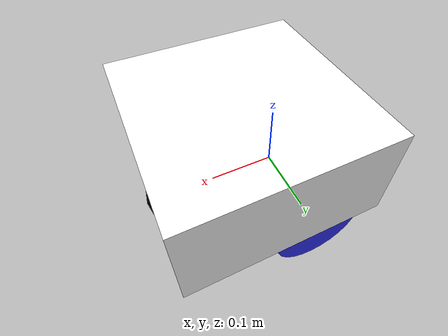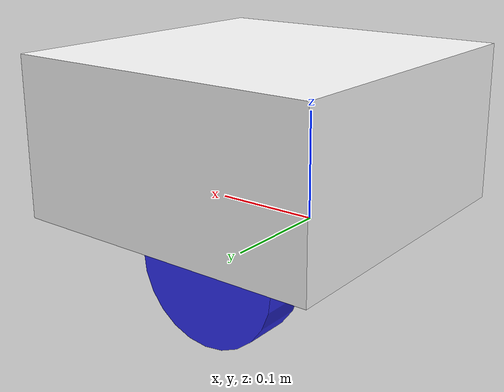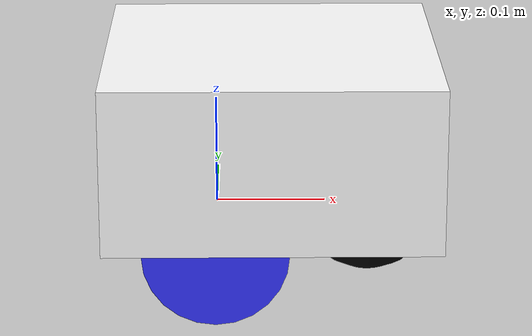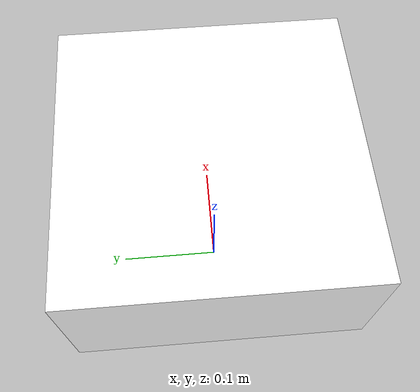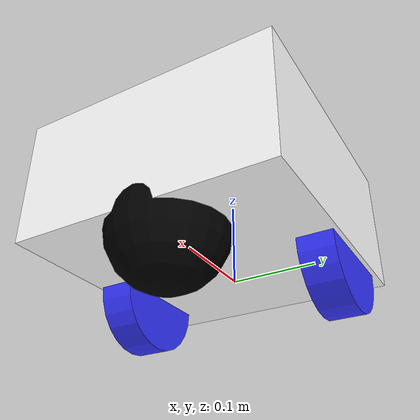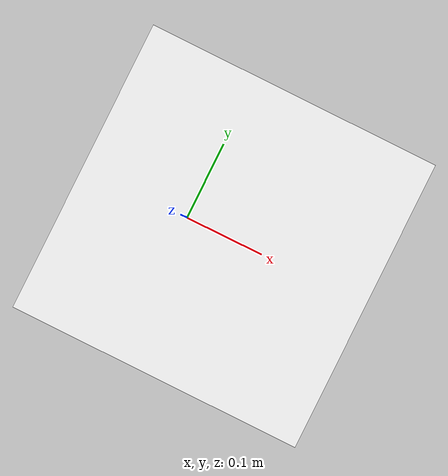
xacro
<?xml version="1.0"?>
<robot xmlns:xacro="http://www.ros.org/wiki/xacro" >

    <xacro:include filename="inertial_macros.xacro"/>

    <material name="white">
        <color rgba="1 1 1 1" />
    </material>

    <material name="orange">
        <color rgba="1 0.3 0.1 1"/>
    </material>

    <material name="blue">
        <color rgba="0.2 0.2 1 1"/>
    </material>

    <material name="black">
        <color rgba="0 0 0 1"/>
    </material>

    <material name="red">
        <color rgba="1 0 0 1"/>
    </material>

    <!-- BASE LINK -->

    <link name="base_link"/>

    <link name="base_footprint"/>

    <joint name="base_footprint_joint" type="fixed">
        <parent link="base_link"/>
        <child link="base_footprint"/>
        <origin xyz="0 0 0" rpy="0 0 0"/>
    </joint>

    <!-- CHASSIS LINK -->

    <joint name="chassis_joint" type="fixed">
        <parent link="base_link"/>
        <child link="chassis"/>
        <origin xyz="-0.1 0 0"/>
    </joint>

    <link name="chassis">
        <visual>
            <origin xyz="0.15 0 0.075"/>
            <geometry>
                <box size="0.3 0.3 0.15"/>
            </geometry>
            <material name="white"/>
        </visual>
        <collision>
            <origin xyz="0.15 0 0.075"/>
            <geometry>
                <box size="0.3 0.3 0.15"/>
            </geometry>
        </collision>
        <xacro:inertial_box mass="0.5" x="0.3" y="0.3" z="0.15">
            <origin xyz="0.15 0 0.075" rpy="0 0 0"/>
        </xacro:inertial_box>
    </link>

    <!-- LEFT WHEEL LINK -->

    <joint name="left_wheel_joint" type="continuous">
        <parent link="base_link"/>
        <child link="left_wheel"/>
        <origin xyz="0 0.125 0" rpy="-${pi/2} 0 0" />
        <axis xyz="0 0 1"/>
    </joint>

    <link name="left_wheel">
        <visual>
            <geometry>
                <cylinder radius="0.065" length="0.04"/>
            </geometry>
            <material name="blue"/>
        </visual>
        <collision>
            <geometry>
                <cylinder radius="0.065" length="0.04"/>
            </geometry>
        </collision>
        <xacro:inertial_cylinder mass="0.1" length="0.04" radius="0.065">
            <origin xyz="0 0 0" rpy="0 0 0"/>
        </xacro:inertial_cylinder>
    </link>

    <!-- RIGHT WHEEL LINK -->

    <joint name="right_wheel_joint" type="continuous">
        <parent link="base_link"/>
        <child link="right_wheel"/>
        <origin xyz="0 -0.125 0" rpy="${pi/2} 0 0" />
        <axis xyz="0 0 -1"/>
    </joint>

    <link name="right_wheel">
        <visual>
            <geometry>
                <cylinder radius="0.065" length="0.04"/>
            </geometry>
            <material name="blue"/>
        </visual>
        <collision>
            <geometry>
                <cylinder radius="0.065" length="0.04"/>
            </geometry>
        </collision>
        <xacro:inertial_cylinder mass="0.1" length="0.04" radius="0.065">
            <origin xyz="0 0 0" rpy="0 0 0"/>
        </xacro:inertial_cylinder>
    </link>

    <!-- CASTER WHEEL LINK -->

    <joint name="caster_wheel_joint" type="fixed">
        <parent link="chassis"/>
        <child link="caster_wheel"/>
        <origin xyz="0.24 0 0"/>
    </joint>

    <link name="caster_wheel">
        <visual>
            <geometry>
                <sphere radius="0.065"/>
            </geometry>
            <material name="black"/>
        </visual>
        <collision>
            <geometry>
                <sphere radius="0.065"/>
            </geometry>
        </collision>
        <xacro:inertial_sphere mass="0.1" radius="0.05">
            <origin xyz="0 0 0" rpy="0 0 0"/>
        </xacro:inertial_sphere>
    </link>

    <gazebo reference='chassis'>
        <material>Gazebo/White</material>
    </gazebo>

    <gazebo reference='left_wheel'>
        <material>Gazebo/Blue</material>
        <mu1>0.1</mu1>
        <mu2>0.1</mu2>
    </gazebo>

    <gazebo reference='right_wheel'>
        <material>Gazebo/Blue</material>
        <mu1>0.1</mu1>
        <mu2>0.1</mu2>
    </gazebo>

    <gazebo reference='caster_wheel'>
        <material>Gazebo/Black</material>
        <mu1>0.1</mu1>
        <mu2>0.1</mu2>
    </gazebo>

</robot>
